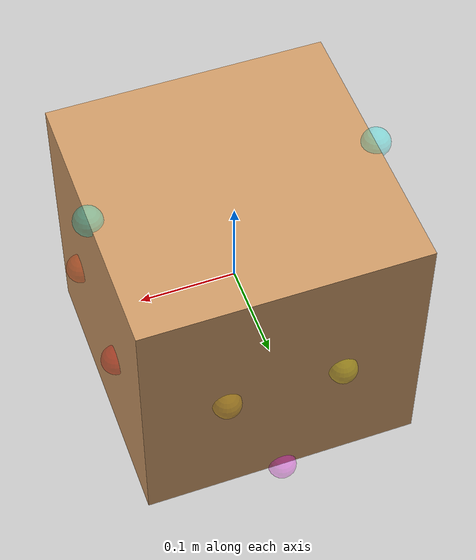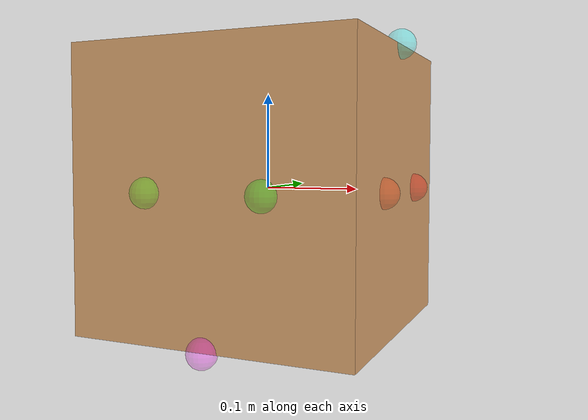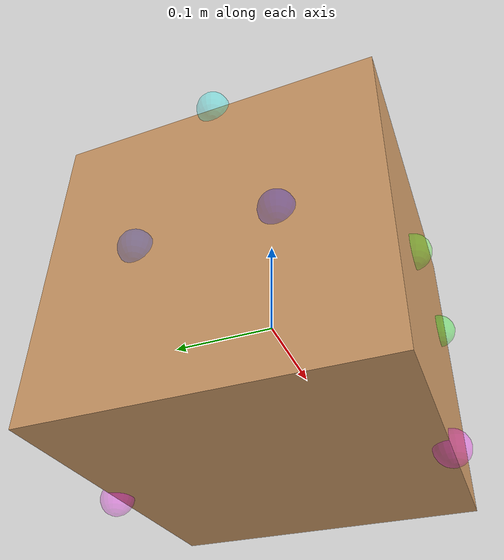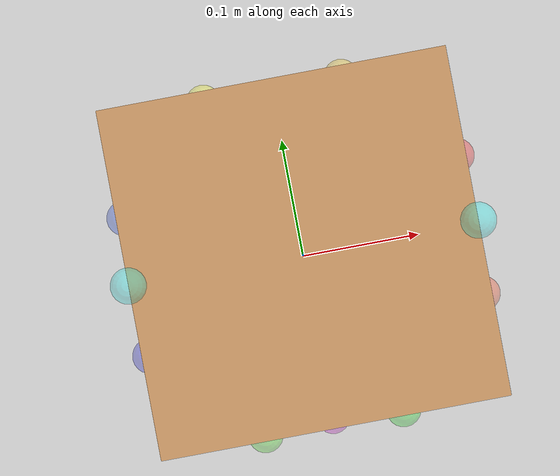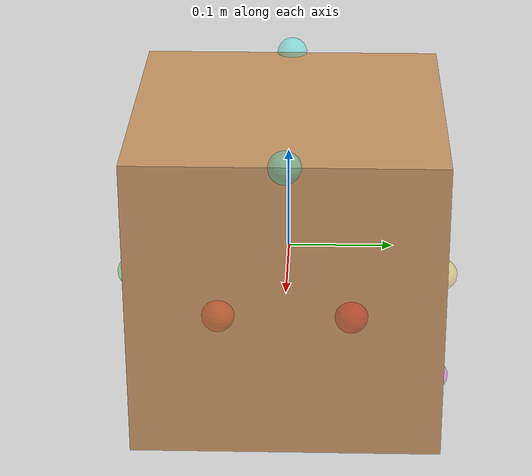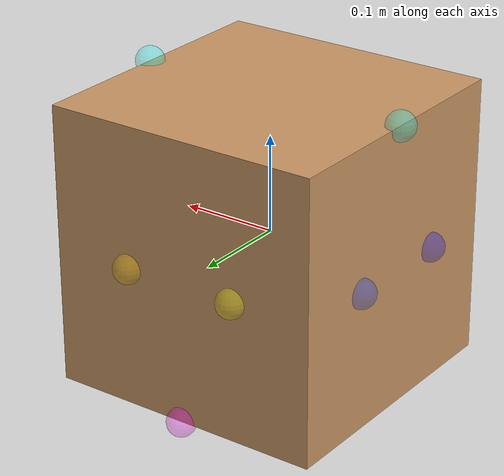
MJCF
<mujoco model="satellite_3d">
  <compiler angle="degree" coordinate="local" inertiafromgeom="true"/>
  <option integrator="RK4" timestep="0.005" gravity="0 0 0"/>

  <visual>
    <global offwidth="2560" offheight="1440"/>
  </visual>

  <default>
    <joint armature="0" damping="0" limited="false"/>
    <geom conaffinity="0" condim="3" density="500" friction="1 0.5 0.5" margin="0" material="geom" rgba="0.8 0.6 0.4 1"/>
    <site type="sphere" size="0.015" rgba="0.5 0.5 0.5 0.3"/>
  </default>

  <asset>
    <texture type="skybox" builtin="gradient" rgb1=".1 .1 .2" rgb2="0 0 0" width="32" height="32"/>
    <texture name="grid" type="2d" builtin="checker" rgb1=".1 .2 .3" rgb2=".2 .3 .4" width="512" height="512" mark="edge" markrgb=".8 .8 .8"/>
    <material name="grid" texture="grid" texrepeat="20 20" texuniform="true" reflectance=".2"/>
    <material name="geom" rgba="0.8 0.6 0.4 1"/>
  </asset>

  <worldbody>
    <light cutoff="100" diffuse="1 1 1" dir="-0 0 -1.3" directional="true" exponent="1" pos="0 0 1.3" specular="0.1 0.1 0.1"/>

    <!-- Floor for reference -->
    <geom name="floor" size="10 10 .05" type="plane" material="grid" pos="0 0 -3.0"/>

    <!-- Overhead Camera -->
    <camera name="overhead_cam" pos="0 0 4" mode="fixed" xyaxes="1 0 0 0 1 0"/>

    <body name="satellite" pos="0 0 0">
      <!-- 6-DOF Free Joint -->
      <joint name="root" type="free"/>

      <!-- Satellite Body (Box 0.29m side -> half-size 0.145) -->
      <geom name="satellite_geom" type="box" size="0.145 0.145 0.145" mass="10"/>

      <!-- Tracking Camera attached to body? No, usually world frame tracking is better handled by viewer code -->

      <!-- Thruster Sites for Visualization (Glow) -->
      <!-- Standard Planar Thrusters (1-8) at Z=0 -->
      <site name="thruster1" pos="0.145 0.06 0"   rgba="1 0 0 0.3"/>
      <site name="thruster2" pos="0.145 -0.06 0"  rgba="1 0.2 0 0.3"/>
      <site name="thruster3" pos="0.06 -0.145 0"  rgba="0 1 0 0.3"/>
      <site name="thruster4" pos="-0.06 -0.145 0" rgba="0.2 1 0 0.3"/>
      <site name="thruster5" pos="-0.145 -0.06 0" rgba="0 0 1 0.3"/>
      <site name="thruster6" pos="-0.145 0.06 0"  rgba="0 0.2 1 0.3"/>
      <site name="thruster7" pos="-0.06 0.145 0"  rgba="1 1 0 0.3"/>
      <site name="thruster8" pos="0.06 0.145 0"   rgba="1 0.8 0 0.3"/>

      <!-- New Z-Axis Thrusters (9-12) -->
      <!-- Top Face (+Z) -->
      <site name="thruster9"  pos="0.145 0 0.145"  rgba="0 1 1 0.3"/>
      <site name="thruster10" pos="-0.145 0 0.145" rgba="0 1 1 0.3"/>

      <!-- Bottom Face (-Z) -->
      <site name="thruster11" pos="0 0.145 -0.145" rgba="1 0 1 0.3"/>
      <site name="thruster12" pos="0 -0.145 -0.145" rgba="1 0 1 0.3"/>
    </body>
  </worldbody>
</mujoco>
